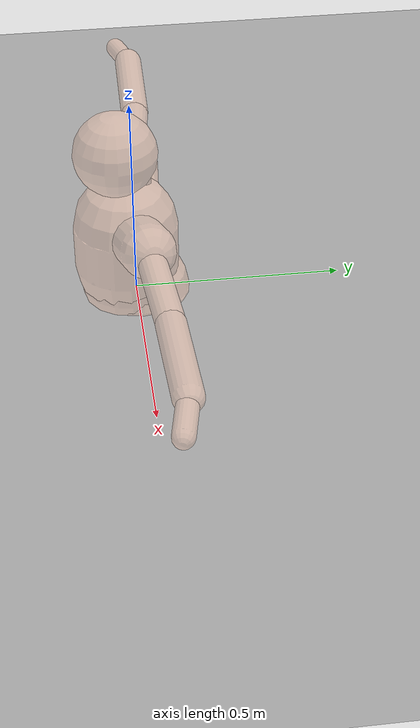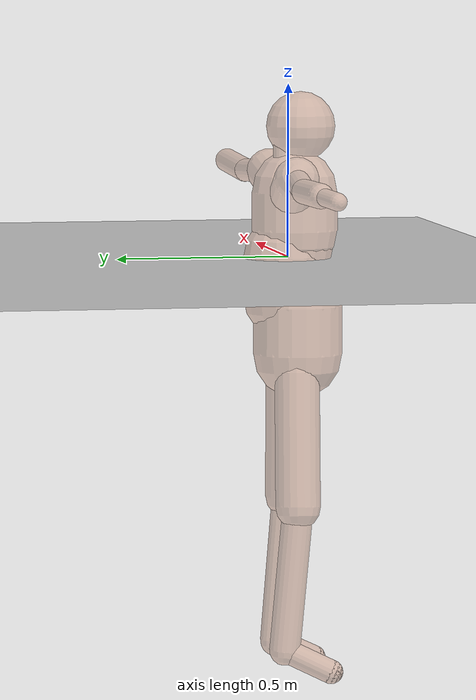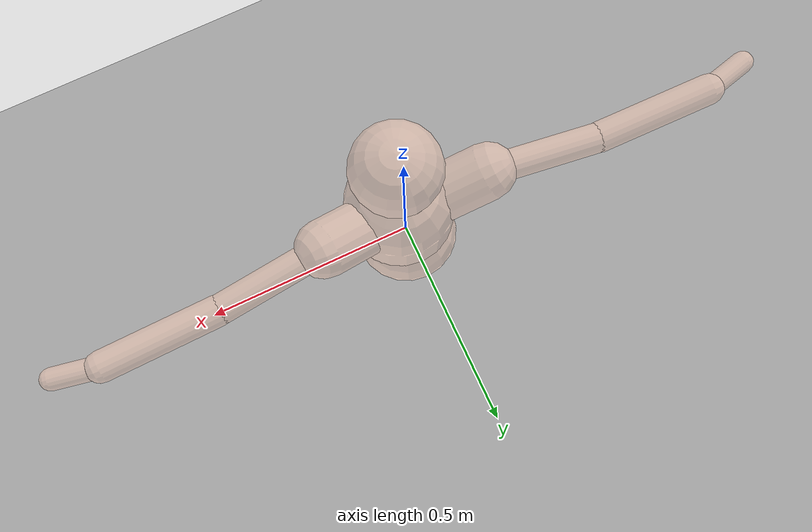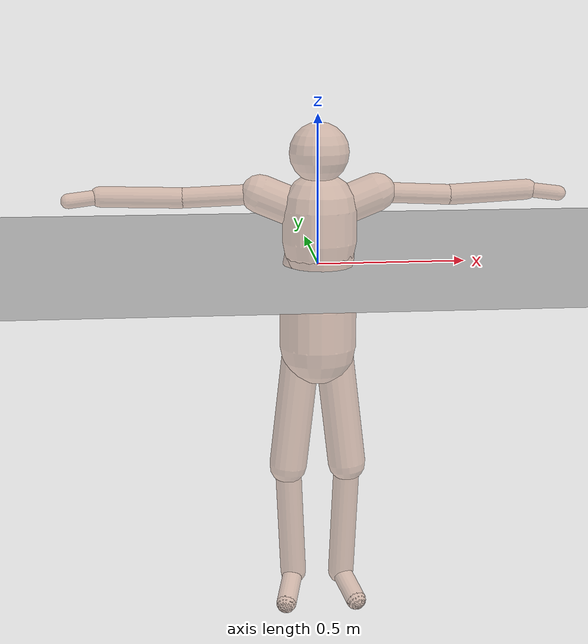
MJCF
<?xml version="1.0" encoding="utf-8"?>
<mujoco model="smplh_human">
  <compiler angle="radian" autolimits="true" inertiafromgeom="true"/>

  <option gravity="0 0 -9.81" timestep="0.002"/>

  <visual>
    <global offwidth="1920" offheight="1080"/>
  </visual>

  <default>
    <default class="human">
      <joint damping="50" armature="0.01"/>
      <geom type="capsule" condim="3" friction="1 0.5 0.001" density="1000"/>
    </default>

    <default class="human_collision">
      <geom type="capsule"
            solref="0.02 1.0"
            solimp="0.9 0.95 0.001"
            group="2"
            contype="1"
            conaffinity="0"
            rgba="0.8 0.6 0.5 0.5"/>
    </default>

    <default class="position_actuator">
      <position kp="200" kv="20"/>
    </default>
  </default>

  <asset>
    <texture type="skybox" builtin="gradient" rgb1="0.3 0.5 0.7" rgb2="0 0 0" width="512" height="512"/>
    <texture name="grid" type="2d" builtin="checker" width="512" height="512" rgb1="0.1 0.1 0.1" rgb2="0.2 0.2 0.2"/>
    <material name="grid_mat" texture="grid" texrepeat="4 4" reflectance="0.1"/>
  </asset>

  <worldbody>
    <geom name="floor" type="plane" size="10 10 0.1" material="grid_mat" conaffinity="1" contype="1"/>
    <body name="Pelvis" pos="-0.0022 -0.0286 -0.2408">
      <freejoint name="root"/>
      <geom name="Pelvis_col" class="human_collision" fromto="0 0 -0.04  0 0 0.10" size="0.1300"/>
      <body name="L_Hip" pos="0.0586 0.0177 -0.0823">
        <joint name="L_Hip_x" type="hinge" axis="1 0 0" range="-3.14 3.14" class="human"/>
        <joint name="L_Hip_y" type="hinge" axis="0 1 0" range="-3.14 3.14" class="human"/>
        <joint name="L_Hip_z" type="hinge" axis="0 0 1" range="-3.14 3.14" class="human"/>
        <geom name="L_Hip_col" class="human_collision" fromto="0.0000 0.0000 0.0000 0.0435 -0.0080 -0.3865" size="0.0650"/>
        <body name="L_Knee" pos="0.0435 -0.0080 -0.3865">
          <joint name="L_Knee_x" type="hinge" axis="1 0 0" range="-3.14 3.14" class="human"/>
          <joint name="L_Knee_y" type="hinge" axis="0 1 0" range="-3.14 3.14" class="human"/>
          <joint name="L_Knee_z" type="hinge" axis="0 0 1" range="-3.14 3.14" class="human"/>
          <geom name="L_Knee_col" class="human_collision" fromto="0.0000 0.0000 0.0000 -0.0148 0.0374 -0.4269" size="0.0450"/>
          <body name="L_Ankle" pos="-0.0148 0.0374 -0.4269">
            <joint name="L_Ankle_x" type="hinge" axis="1 0 0" range="-3.14 3.14" class="human"/>
            <joint name="L_Ankle_y" type="hinge" axis="0 1 0" range="-3.14 3.14" class="human"/>
            <joint name="L_Ankle_z" type="hinge" axis="0 0 1" range="-3.14 3.14" class="human"/>
            <geom name="L_Ankle_col" class="human_collision" fromto="0.0000 0.0000 0.0000 0.0411 -0.1220 -0.0603" size="0.0350"/>
            <body name="L_Toe" pos="0.0411 -0.1220 -0.0603">
              <joint name="L_Toe_x" type="hinge" axis="1 0 0" range="-3.14 3.14" class="human"/>
              <joint name="L_Toe_y" type="hinge" axis="0 1 0" range="-3.14 3.14" class="human"/>
              <joint name="L_Toe_z" type="hinge" axis="0 0 1" range="-3.14 3.14" class="human"/>
              <geom name="L_Toe_col" class="human_collision" type="sphere" pos="0.0000 0.0000 0.0000" size="0.0350"/>
            </body>
          </body>
        </body>
      </body>
      <body name="R_Hip" pos="-0.0603 0.0135 -0.0905">
        <joint name="R_Hip_x" type="hinge" axis="1 0 0" range="-3.14 3.14" class="human"/>
        <joint name="R_Hip_y" type="hinge" axis="0 1 0" range="-3.14 3.14" class="human"/>
        <joint name="R_Hip_z" type="hinge" axis="0 0 1" range="-3.14 3.14" class="human"/>
        <geom name="R_Hip_col" class="human_collision" fromto="0.0000 0.0000 0.0000 -0.0433 0.0048 -0.3837" size="0.0650"/>
        <body name="R_Knee" pos="-0.0433 0.0048 -0.3837">
          <joint name="R_Knee_x" type="hinge" axis="1 0 0" range="-3.14 3.14" class="human"/>
          <joint name="R_Knee_y" type="hinge" axis="0 1 0" range="-3.14 3.14" class="human"/>
          <joint name="R_Knee_z" type="hinge" axis="0 0 1" range="-3.14 3.14" class="human"/>
          <geom name="R_Knee_col" class="human_collision" fromto="0.0000 0.0000 0.0000 0.0191 0.0346 -0.4200" size="0.0450"/>
          <body name="R_Ankle" pos="0.0191 0.0346 -0.4200">
            <joint name="R_Ankle_x" type="hinge" axis="1 0 0" range="-3.14 3.14" class="human"/>
            <joint name="R_Ankle_y" type="hinge" axis="0 1 0" range="-3.14 3.14" class="human"/>
            <joint name="R_Ankle_z" type="hinge" axis="0 0 1" range="-3.14 3.14" class="human"/>
            <geom name="R_Ankle_col" class="human_collision" fromto="0.0000 0.0000 0.0000 -0.0348 -0.1303 -0.0621" size="0.0350"/>
            <body name="R_Toe" pos="-0.0348 -0.1303 -0.0621">
              <joint name="R_Toe_x" type="hinge" axis="1 0 0" range="-3.14 3.14" class="human"/>
              <joint name="R_Toe_y" type="hinge" axis="0 1 0" range="-3.14 3.14" class="human"/>
              <joint name="R_Toe_z" type="hinge" axis="0 0 1" range="-3.14 3.14" class="human"/>
              <geom name="R_Toe_col" class="human_collision" type="sphere" pos="0.0000 0.0000 0.0000" size="0.0350"/>
            </body>
          </body>
        </body>
      </body>
      <body name="Torso" pos="0.0044 0.0384 0.1244">
        <joint name="Torso_x" type="hinge" axis="1 0 0" range="-3.14 3.14" class="human"/>
        <joint name="Torso_y" type="hinge" axis="0 1 0" range="-3.14 3.14" class="human"/>
        <joint name="Torso_z" type="hinge" axis="0 0 1" range="-3.14 3.14" class="human"/>
        <!-- Vertical trunk capsules (local +Z); wider waist-to-chest, head kept clear. -->
        <geom name="Torso_col" class="human_collision" fromto="0 0 0  0 0 0.12" size="0.1200"/>
        <body name="Spine" pos="0.0045 -0.0268 0.1380">
          <joint name="Spine_x" type="hinge" axis="1 0 0" range="-3.14 3.14" class="human"/>
          <joint name="Spine_y" type="hinge" axis="0 1 0" range="-3.14 3.14" class="human"/>
          <joint name="Spine_z" type="hinge" axis="0 0 1" range="-3.14 3.14" class="human"/>
          <geom name="Spine_col" class="human_collision" fromto="0 0 0  0 0 0.05" size="0.1150"/>
          <body name="Chest" pos="-0.0023 -0.0029 0.0560">
            <joint name="Chest_x" type="hinge" axis="1 0 0" range="-3.14 3.14" class="human"/>
            <joint name="Chest_y" type="hinge" axis="0 1 0" range="-3.14 3.14" class="human"/>
            <joint name="Chest_z" type="hinge" axis="0 0 1" range="-3.14 3.14" class="human"/>
            <geom name="Chest_col" class="human_collision" fromto="0 0 0  0 0 0.11" size="0.1250"/>
            <body name="Neck" pos="-0.0134 0.0335 0.2116">
              <joint name="Neck_x" type="hinge" axis="1 0 0" range="-3.14 3.14" class="human"/>
              <joint name="Neck_y" type="hinge" axis="0 1 0" range="-3.14 3.14" class="human"/>
              <joint name="Neck_z" type="hinge" axis="0 0 1" range="-3.14 3.14" class="human"/>
              <geom name="Neck_col" class="human_collision" fromto="0 0 0  0 0 0.055" size="0.0320"/>
              <body name="Head" pos="0.0101 -0.0504 0.0889">
                <joint name="Head_x" type="hinge" axis="1 0 0" range="-3.14 3.14" class="human"/>
                <joint name="Head_y" type="hinge" axis="0 1 0" range="-3.14 3.14" class="human"/>
                <joint name="Head_z" type="hinge" axis="0 0 1" range="-3.14 3.14" class="human"/>
                <geom name="Head_col" class="human_collision" type="sphere" pos="0.0000 0.0000 0.0000" size="0.1000"/>
              </body>
            </body>
            <body name="L_Thorax" pos="0.0717 0.0189 0.1140">
              <joint name="L_Thorax_x" type="hinge" axis="1 0 0" range="-3.14 3.14" class="human"/>
              <joint name="L_Thorax_y" type="hinge" axis="0 1 0" range="-3.14 3.14" class="human"/>
              <joint name="L_Thorax_z" type="hinge" axis="0 0 1" range="-3.14 3.14" class="human"/>
              <geom name="L_Thorax_col" class="human_collision" fromto="0.0000 0.0000 0.0000 0.1229 0.0190 0.0452" size="0.0650"/>
              <body name="L_Shoulder" pos="0.1229 0.0190 0.0452">
                <joint name="L_Shoulder_x" type="hinge" axis="1 0 0" range="-3.14 3.14" class="human"/>
                <joint name="L_Shoulder_y" type="hinge" axis="0 1 0" range="-3.14 3.14" class="human"/>
                <joint name="L_Shoulder_z" type="hinge" axis="0 0 1" range="-3.14 3.14" class="human"/>
                <geom name="L_Shoulder_col" class="human_collision" fromto="0.0000 0.0000 0.0000 0.2553 0.0229 -0.0156" size="0.0340"/>
                <body name="L_Elbow" pos="0.2553 0.0229 -0.0156">
                  <joint name="L_Elbow_x" type="hinge" axis="1 0 0" range="-3.14 3.14" class="human"/>
                  <joint name="L_Elbow_y" type="hinge" axis="0 1 0" range="-3.14 3.14" class="human"/>
                  <joint name="L_Elbow_z" type="hinge" axis="0 0 1" range="-3.14 3.14" class="human"/>
                  <geom name="L_Elbow_col" class="human_collision" fromto="0.0000 0.0000 0.0000 0.2657 0.0074 0.0127" size="0.0350"/>
                  <body name="L_Wrist" pos="0.2657 0.0074 0.0127">
                    <joint name="L_Wrist_x" type="hinge" axis="1 0 0" range="-3.14 3.14" class="human"/>
                    <joint name="L_Wrist_y" type="hinge" axis="0 1 0" range="-3.14 3.14" class="human"/>
                    <joint name="L_Wrist_z" type="hinge" axis="0 0 1" range="-3.14 3.14" class="human"/>
                    <geom name="L_Wrist_col" class="human_collision" fromto="0.0000 0.0000 0.0000 0.1059 -0.0221 -0.0110" size="0.0250"/>
                  </body>
                </body>
              </body>
            </body>
            <body name="R_Thorax" pos="-0.0830 0.0237 0.1125">
              <joint name="R_Thorax_x" type="hinge" axis="1 0 0" range="-3.14 3.14" class="human"/>
              <joint name="R_Thorax_y" type="hinge" axis="0 1 0" range="-3.14 3.14" class="human"/>
              <joint name="R_Thorax_z" type="hinge" axis="0 0 1" range="-3.14 3.14" class="human"/>
              <geom name="R_Thorax_col" class="human_collision" fromto="0.0000 0.0000 0.0000 -0.1132 0.0085 0.0469" size="0.0650"/>
              <body name="R_Shoulder" pos="-0.1132 0.0085 0.0469">
                <joint name="R_Shoulder_x" type="hinge" axis="1 0 0" range="-3.14 3.14" class="human"/>
                <joint name="R_Shoulder_y" type="hinge" axis="0 1 0" range="-3.14 3.14" class="human"/>
                <joint name="R_Shoulder_z" type="hinge" axis="0 0 1" range="-3.14 3.14" class="human"/>
                <geom name="R_Shoulder_col" class="human_collision" fromto="0.0000 0.0000 0.0000 -0.2601 0.0313 -0.0144" size="0.0340"/>
                <body name="R_Elbow" pos="-0.2601 0.0313 -0.0144">
                  <joint name="R_Elbow_x" type="hinge" axis="1 0 0" range="-3.14 3.14" class="human"/>
                  <joint name="R_Elbow_y" type="hinge" axis="0 1 0" range="-3.14 3.14" class="human"/>
                  <joint name="R_Elbow_z" type="hinge" axis="0 0 1" range="-3.14 3.14" class="human"/>
                  <geom name="R_Elbow_col" class="human_collision" fromto="0.0000 0.0000 0.0000 -0.2691 0.0060 0.0068" size="0.0350"/>
                  <body name="R_Wrist" pos="-0.2691 0.0060 0.0068">
                    <joint name="R_Wrist_x" type="hinge" axis="1 0 0" range="-3.14 3.14" class="human"/>
                    <joint name="R_Wrist_y" type="hinge" axis="0 1 0" range="-3.14 3.14" class="human"/>
                    <joint name="R_Wrist_z" type="hinge" axis="0 0 1" range="-3.14 3.14" class="human"/>
                    <geom name="R_Wrist_col" class="human_collision" fromto="0.0000 0.0000 0.0000 -0.1041 -0.0262 -0.0088" size="0.0250"/>
                  </body>
                </body>
              </body>
            </body>
          </body>
        </body>
      </body>
    </body>
  </worldbody>

  <actuator>
    <position name="act_L_Hip_x" joint="L_Hip_x" class="position_actuator"/>
    <position name="act_L_Hip_y" joint="L_Hip_y" class="position_actuator"/>
    <position name="act_L_Hip_z" joint="L_Hip_z" class="position_actuator"/>
    <position name="act_R_Hip_x" joint="R_Hip_x" class="position_actuator"/>
    <position name="act_R_Hip_y" joint="R_Hip_y" class="position_actuator"/>
    <position name="act_R_Hip_z" joint="R_Hip_z" class="position_actuator"/>
    <position name="act_Torso_x" joint="Torso_x" class="position_actuator"/>
    <position name="act_Torso_y" joint="Torso_y" class="position_actuator"/>
    <position name="act_Torso_z" joint="Torso_z" class="position_actuator"/>
    <position name="act_L_Knee_x" joint="L_Knee_x" class="position_actuator"/>
    <position name="act_L_Knee_y" joint="L_Knee_y" class="position_actuator"/>
    <position name="act_L_Knee_z" joint="L_Knee_z" class="position_actuator"/>
    <position name="act_R_Knee_x" joint="R_Knee_x" class="position_actuator"/>
    <position name="act_R_Knee_y" joint="R_Knee_y" class="position_actuator"/>
    <position name="act_R_Knee_z" joint="R_Knee_z" class="position_actuator"/>
    <position name="act_Spine_x" joint="Spine_x" class="position_actuator"/>
    <position name="act_Spine_y" joint="Spine_y" class="position_actuator"/>
    <position name="act_Spine_z" joint="Spine_z" class="position_actuator"/>
    <position name="act_L_Ankle_x" joint="L_Ankle_x" class="position_actuator"/>
    <position name="act_L_Ankle_y" joint="L_Ankle_y" class="position_actuator"/>
    <position name="act_L_Ankle_z" joint="L_Ankle_z" class="position_actuator"/>
    <position name="act_R_Ankle_x" joint="R_Ankle_x" class="position_actuator"/>
    <position name="act_R_Ankle_y" joint="R_Ankle_y" class="position_actuator"/>
    <position name="act_R_Ankle_z" joint="R_Ankle_z" class="position_actuator"/>
    <position name="act_Chest_x" joint="Chest_x" class="position_actuator"/>
    <position name="act_Chest_y" joint="Chest_y" class="position_actuator"/>
    <position name="act_Chest_z" joint="Chest_z" class="position_actuator"/>
    <position name="act_L_Toe_x" joint="L_Toe_x" class="position_actuator"/>
    <position name="act_L_Toe_y" joint="L_Toe_y" class="position_actuator"/>
    <position name="act_L_Toe_z" joint="L_Toe_z" class="position_actuator"/>
    <position name="act_R_Toe_x" joint="R_Toe_x" class="position_actuator"/>
    <position name="act_R_Toe_y" joint="R_Toe_y" class="position_actuator"/>
    <position name="act_R_Toe_z" joint="R_Toe_z" class="position_actuator"/>
    <position name="act_Neck_x" joint="Neck_x" class="position_actuator"/>
    <position name="act_Neck_y" joint="Neck_y" class="position_actuator"/>
    <position name="act_Neck_z" joint="Neck_z" class="position_actuator"/>
    <position name="act_L_Thorax_x" joint="L_Thorax_x" class="position_actuator"/>
    <position name="act_L_Thorax_y" joint="L_Thorax_y" class="position_actuator"/>
    <position name="act_L_Thorax_z" joint="L_Thorax_z" class="position_actuator"/>
    <position name="act_R_Thorax_x" joint="R_Thorax_x" class="position_actuator"/>
    <position name="act_R_Thorax_y" joint="R_Thorax_y" class="position_actuator"/>
    <position name="act_R_Thorax_z" joint="R_Thorax_z" class="position_actuator"/>
    <position name="act_Head_x" joint="Head_x" class="position_actuator"/>
    <position name="act_Head_y" joint="Head_y" class="position_actuator"/>
    <position name="act_Head_z" joint="Head_z" class="position_actuator"/>
    <position name="act_L_Shoulder_x" joint="L_Shoulder_x" class="position_actuator"/>
    <position name="act_L_Shoulder_y" joint="L_Shoulder_y" class="position_actuator"/>
    <position name="act_L_Shoulder_z" joint="L_Shoulder_z" class="position_actuator"/>
    <position name="act_R_Shoulder_x" joint="R_Shoulder_x" class="position_actuator"/>
    <position name="act_R_Shoulder_y" joint="R_Shoulder_y" class="position_actuator"/>
    <position name="act_R_Shoulder_z" joint="R_Shoulder_z" class="position_actuator"/>
    <position name="act_L_Elbow_x" joint="L_Elbow_x" class="position_actuator"/>
    <position name="act_L_Elbow_y" joint="L_Elbow_y" class="position_actuator"/>
    <position name="act_L_Elbow_z" joint="L_Elbow_z" class="position_actuator"/>
    <position name="act_R_Elbow_x" joint="R_Elbow_x" class="position_actuator"/>
    <position name="act_R_Elbow_y" joint="R_Elbow_y" class="position_actuator"/>
    <position name="act_R_Elbow_z" joint="R_Elbow_z" class="position_actuator"/>
    <position name="act_L_Wrist_x" joint="L_Wrist_x" class="position_actuator"/>
    <position name="act_L_Wrist_y" joint="L_Wrist_y" class="position_actuator"/>
    <position name="act_L_Wrist_z" joint="L_Wrist_z" class="position_actuator"/>
    <position name="act_R_Wrist_x" joint="R_Wrist_x" class="position_actuator"/>
    <position name="act_R_Wrist_y" joint="R_Wrist_y" class="position_actuator"/>
    <position name="act_R_Wrist_z" joint="R_Wrist_z" class="position_actuator"/>
  </actuator>
</mujoco>
